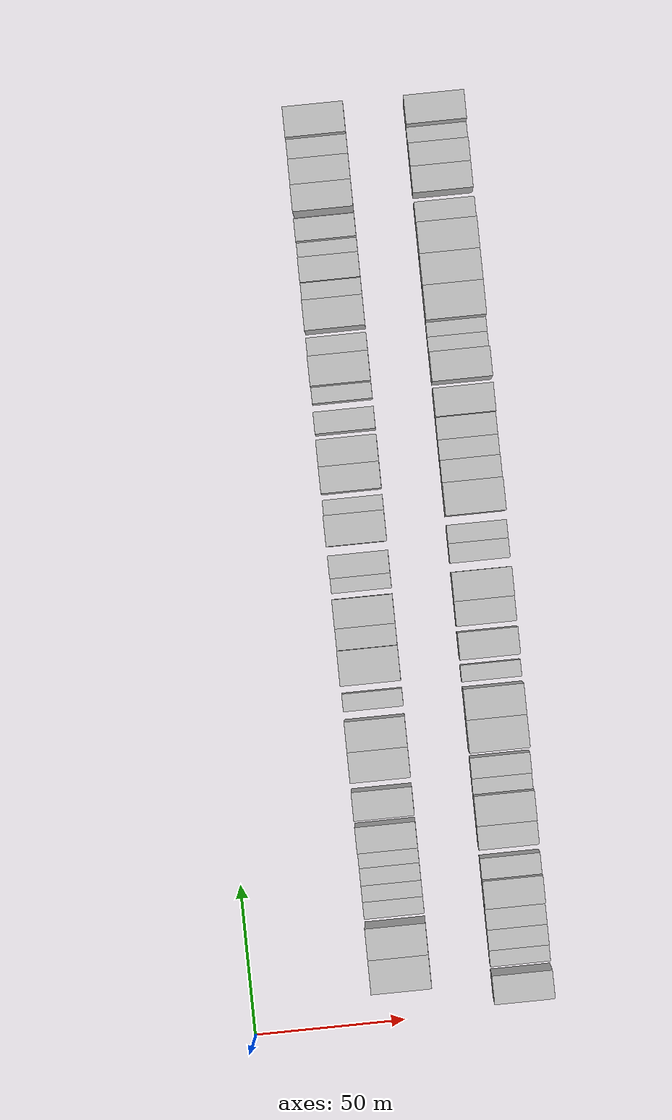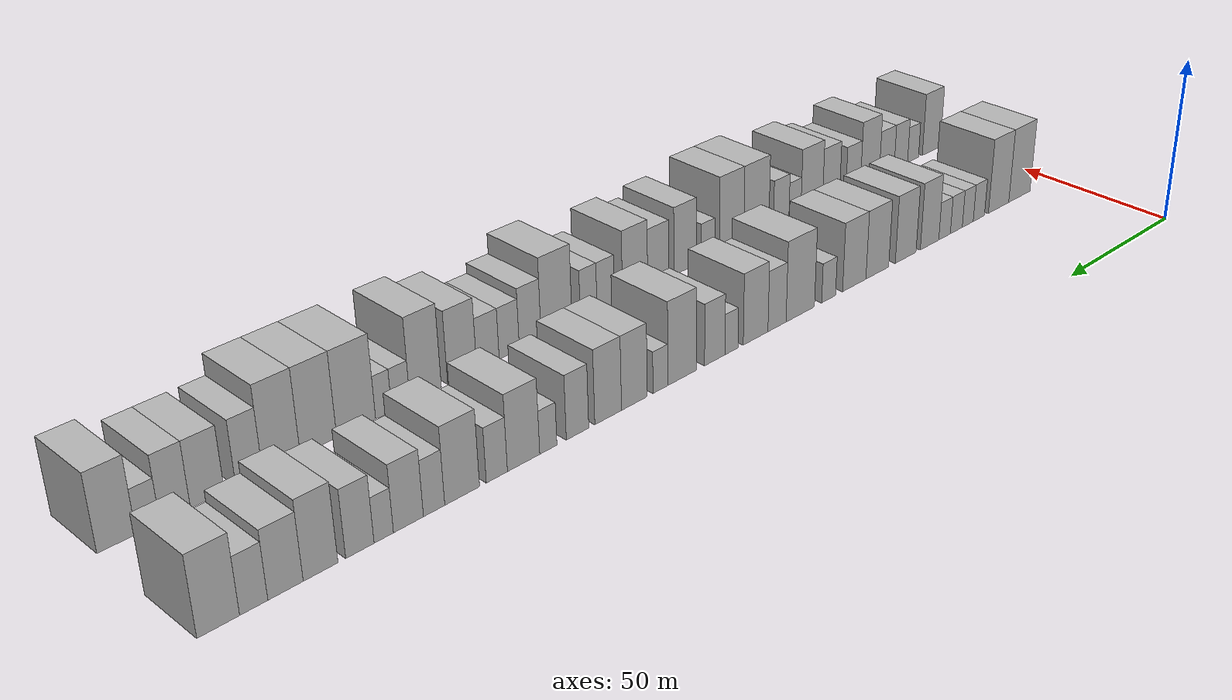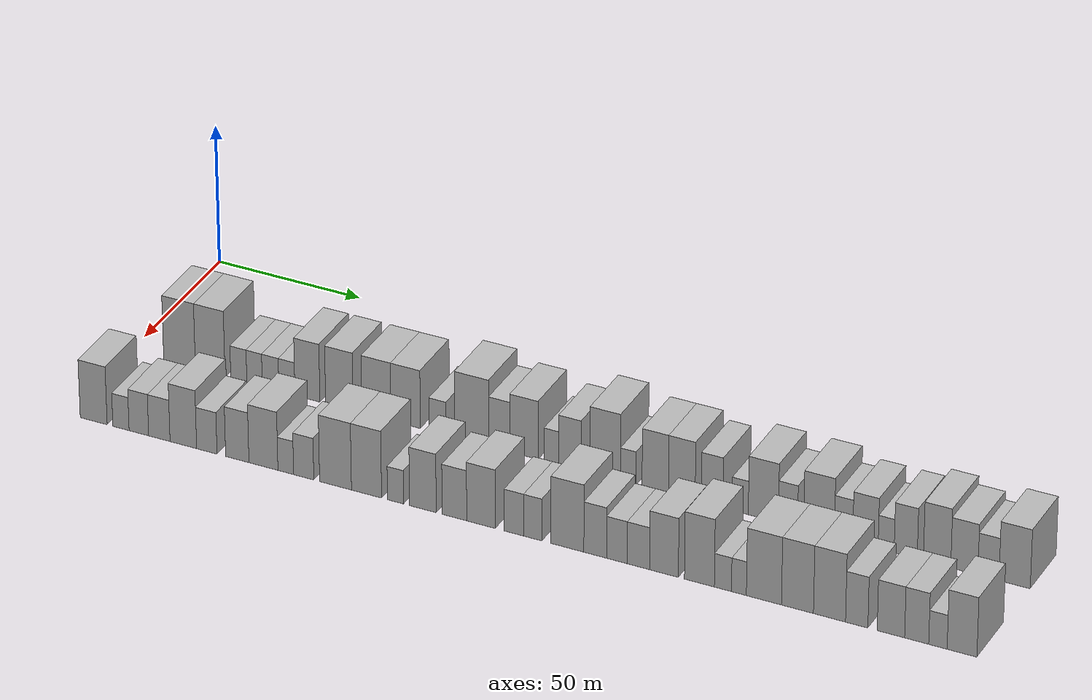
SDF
<sdf version="1.6">
 <world name="default">
  <model name="building_33">
   <static>1</static>
   <pose>50.0000 17.7263 0 0.000000 0.000000 0.000000</pose>
   <link name="link">
    <pose>0 0 12.00 0 0 0</pose>
    <collision name="collision"><geometry><box><size>20.0000 11.1909 24.0000</size></box></geometry></collision>
    <visual name="visual">
     <cast_shadows>0</cast_shadows>
     <geometry><box><size>20.0000 11.1909 24.0000</size></box></geometry>
     <material>
      <script>
       <uri>model://HANNAS_wall/materials/scripts</uri>
       <uri>model://HANNAS_wall/materials/textures</uri>
       <name>vrc/HANNAS_wall</name>
      </script>
     </material>
    </visual>
   </link>
  </model>
  <model name="building_34">
   <static>1</static>
   <pose>50.0000 28.5475 0 0.000000 0.000000 0.000000</pose>
   <link name="link">
    <pose>0 0 12.00 0 0 0</pose>
    <collision name="collision"><geometry><box><size>20.0000 10.4515 24.0000</size></box></geometry></collision>
    <visual name="visual">
     <cast_shadows>0</cast_shadows>
     <geometry><box><size>20.0000 10.4515 24.0000</size></box></geometry>
     <material>
      <script>
       <uri>model://HANNAS_wall/materials/scripts</uri>
       <uri>model://HANNAS_wall/materials/textures</uri>
       <name>vrc/HANNAS_wall</name>
      </script>
     </material>
    </visual>
   </link>
  </model>
  <model name="building_35">
   <static>1</static>
   <pose>50.0000 38.5941 0 0.000000 0.000000 0.000000</pose>
   <link name="link">
    <pose>0 0 6.00 0 0 0</pose>
    <collision name="collision"><geometry><box><size>20.0000 5.6416 12.0000</size></box></geometry></collision>
    <visual name="visual">
     <cast_shadows>0</cast_shadows>
     <geometry><box><size>20.0000 5.6416 12.0000</size></box></geometry>
     <material>
      <script>
       <uri>model://HANNAS_wall/materials/scripts</uri>
       <uri>model://HANNAS_wall/materials/textures</uri>
       <name>vrc/HANNAS_wall</name>
      </script>
     </material>
    </visual>
   </link>
  </model>
  <model name="building_36">
   <static>1</static>
   <pose>50.0000 44.1248 0 0.000000 0.000000 0.000000</pose>
   <link name="link">
    <pose>0 0 6.00 0 0 0</pose>
    <collision name="collision"><geometry><box><size>20.0000 5.4198 12.0000</size></box></geometry></collision>
    <visual name="visual">
     <cast_shadows>0</cast_shadows>
     <geometry><box><size>20.0000 5.4198 12.0000</size></box></geometry>
     <material>
      <script>
       <uri>model://HANNAS_wall/materials/scripts</uri>
       <uri>model://HANNAS_wall/materials/textures</uri>
       <name>vrc/HANNAS_wall</name>
      </script>
     </material>
    </visual>
   </link>
  </model>
  <model name="building_37">
   <static>1</static>
   <pose>50.0000 49.7424 0 0.000000 0.000000 0.000000</pose>
   <link name="link">
    <pose>0 0 6.00 0 0 0</pose>
    <collision name="collision"><geometry><box><size>20.0000 5.8154 12.0000</size></box></geometry></collision>
    <visual name="visual">
     <cast_shadows>0</cast_shadows>
     <geometry><box><size>20.0000 5.8154 12.0000</size></box></geometry>
     <material>
      <script>
       <uri>model://HANNAS_wall/materials/scripts</uri>
       <uri>model://HANNAS_wall/materials/textures</uri>
       <name>vrc/HANNAS_wall</name>
      </script>
     </material>
    </visual>
   </link>
  </model>
  <model name="building_38">
   <static>1</static>
   <pose>50.0000 55.4528 0 0.000000 0.000000 0.000000</pose>
   <link name="link">
    <pose>0 0 6.00 0 0 0</pose>
    <collision name="collision"><geometry><box><size>20.0000 5.6054 12.0000</size></box></geometry></collision>
    <visual name="visual">
     <cast_shadows>0</cast_shadows>
     <geometry><box><size>20.0000 5.6054 12.0000</size></box></geometry>
     <material>
      <script>
       <uri>model://HANNAS_wall/materials/scripts</uri>
       <uri>model://HANNAS_wall/materials/textures</uri>
       <name>vrc/HANNAS_wall</name>
      </script>
     </material>
    </visual>
   </link>
  </model>
  <model name="building_39">
   <static>1</static>
   <pose>50.0000 62.6097 0 0.000000 0.000000 0.000000</pose>
   <link name="link">
    <pose>0 0 10.50 0 0 0</pose>
    <collision name="collision"><geometry><box><size>20.0000 8.7083 21.0000</size></box></geometry></collision>
    <visual name="visual">
     <cast_shadows>0</cast_shadows>
     <geometry><box><size>20.0000 8.7083 21.0000</size></box></geometry>
     <material>
      <script>
       <uri>model://HANNAS_wall/materials/scripts</uri>
       <uri>model://HANNAS_wall/materials/textures</uri>
       <name>vrc/HANNAS_wall</name>
      </script>
     </material>
    </visual>
   </link>
  </model>
  <model name="building_40">
   <static>1</static>
   <pose>50.0000 73.7366 0 0.000000 0.000000 0.000000</pose>
   <link name="link">
    <pose>0 0 10.50 0 0 0</pose>
    <collision name="collision"><geometry><box><size>20.0000 9.5457 21.0000</size></box></geometry></collision>
    <visual name="visual">
     <cast_shadows>0</cast_shadows>
     <geometry><box><size>20.0000 9.5457 21.0000</size></box></geometry>
     <material>
      <script>
       <uri>model://HANNAS_wall/materials/scripts</uri>
       <uri>model://HANNAS_wall/materials/textures</uri>
       <name>vrc/HANNAS_wall</name>
      </script>
     </material>
    </visual>
   </link>
  </model>
  <model name="building_41">
   <static>1</static>
   <pose>50.0000 86.5715 0 0.000000 0.000000 0.000000</pose>
   <link name="link">
    <pose>0 0 10.50 0 0 0</pose>
    <collision name="collision"><geometry><box><size>20.0000 10.1241 21.0000</size></box></geometry></collision>
    <visual name="visual">
     <cast_shadows>0</cast_shadows>
     <geometry><box><size>20.0000 10.1241 21.0000</size></box></geometry>
     <material>
      <script>
       <uri>model://HANNAS_wall/materials/scripts</uri>
       <uri>model://HANNAS_wall/materials/textures</uri>
       <name>vrc/HANNAS_wall</name>
      </script>
     </material>
    </visual>
   </link>
  </model>
  <model name="building_42">
   <static>1</static>
   <pose>50.0000 96.6998 0 0.000000 0.000000 0.000000</pose>
   <link name="link">
    <pose>0 0 10.50 0 0 0</pose>
    <collision name="collision"><geometry><box><size>20.0000 10.1325 21.0000</size></box></geometry></collision>
    <visual name="visual">
     <cast_shadows>0</cast_shadows>
     <geometry><box><size>20.0000 10.1325 21.0000</size></box></geometry>
     <material>
      <script>
       <uri>model://HANNAS_wall/materials/scripts</uri>
       <uri>model://HANNAS_wall/materials/textures</uri>
       <name>vrc/HANNAS_wall</name>
      </script>
     </material>
    </visual>
   </link>
  </model>
  <model name="building_43">
   <static>1</static>
   <pose>50.0000 107.6959 0 0.000000 0.000000 0.000000</pose>
   <link name="link">
    <pose>0 0 6.00 0 0 0</pose>
    <collision name="collision"><geometry><box><size>20.0000 5.8596 12.0000</size></box></geometry></collision>
    <visual name="visual">
     <cast_shadows>0</cast_shadows>
     <geometry><box><size>20.0000 5.8596 12.0000</size></box></geometry>
     <material>
      <script>
       <uri>model://HANNAS_wall/materials/scripts</uri>
       <uri>model://HANNAS_wall/materials/textures</uri>
       <name>vrc/HANNAS_wall</name>
      </script>
     </material>
    </visual>
   </link>
  </model>
  <model name="building_44">
   <static>1</static>
   <pose>50.0000 119.4271 0 0.000000 0.000000 0.000000</pose>
   <link name="link">
    <pose>0 0 12.00 0 0 0</pose>
    <collision name="collision"><geometry><box><size>20.0000 11.6029 24.0000</size></box></geometry></collision>
    <visual name="visual">
     <cast_shadows>0</cast_shadows>
     <geometry><box><size>20.0000 11.6029 24.0000</size></box></geometry>
     <material>
      <script>
       <uri>model://HANNAS_wall/materials/scripts</uri>
       <uri>model://HANNAS_wall/materials/textures</uri>
       <name>vrc/HANNAS_wall</name>
      </script>
     </material>
    </visual>
   </link>
  </model>
  <model name="building_45">
   <static>1</static>
   <pose>50.0000 128.8334 0 0.000000 0.000000 0.000000</pose>
   <link name="link">
    <pose>0 0 9.00 0 0 0</pose>
    <collision name="collision"><geometry><box><size>20.0000 7.2097 18.0000</size></box></geometry></collision>
    <visual name="visual">
     <cast_shadows>0</cast_shadows>
     <geometry><box><size>20.0000 7.2097 18.0000</size></box></geometry>
     <material>
      <script>
       <uri>model://HANNAS_wall/materials/scripts</uri>
       <uri>model://HANNAS_wall/materials/textures</uri>
       <name>vrc/HANNAS_wall</name>
      </script>
     </material>
    </visual>
   </link>
  </model>
  <model name="building_46">
   <static>1</static>
   <pose>50.0000 137.2449 0 0.000000 0.000000 0.000000</pose>
   <link name="link">
    <pose>0 0 10.50 0 0 0</pose>
    <collision name="collision"><geometry><box><size>20.0000 9.6132 21.0000</size></box></geometry></collision>
    <visual name="visual">
     <cast_shadows>0</cast_shadows>
     <geometry><box><size>20.0000 9.6132 21.0000</size></box></geometry>
     <material>
      <script>
       <uri>model://HANNAS_wall/materials/scripts</uri>
       <uri>model://HANNAS_wall/materials/textures</uri>
       <name>vrc/HANNAS_wall</name>
      </script>
     </material>
    </visual>
   </link>
  </model>
  <model name="building_47">
   <static>1</static>
   <pose>50.0000 146.5367 0 0.000000 0.000000 0.000000</pose>
   <link name="link">
    <pose>0 0 6.00 0 0 0</pose>
    <collision name="collision"><geometry><box><size>20.0000 4.9704 12.0000</size></box></geometry></collision>
    <visual name="visual">
     <cast_shadows>0</cast_shadows>
     <geometry><box><size>20.0000 4.9704 12.0000</size></box></geometry>
     <material>
      <script>
       <uri>model://HANNAS_wall/materials/scripts</uri>
       <uri>model://HANNAS_wall/materials/textures</uri>
       <name>vrc/HANNAS_wall</name>
      </script>
     </material>
    </visual>
   </link>
  </model>
  <model name="building_48">
   <static>1</static>
   <pose>50.0000 152.8156 0 0.000000 0.000000 0.000000</pose>
   <link name="link">
    <pose>0 0 9.00 0 0 0</pose>
    <collision name="collision"><geometry><box><size>20.0000 7.5873 18.0000</size></box></geometry></collision>
    <visual name="visual">
     <cast_shadows>0</cast_shadows>
     <geometry><box><size>20.0000 7.5873 18.0000</size></box></geometry>
     <material>
      <script>
       <uri>model://HANNAS_wall/materials/scripts</uri>
       <uri>model://HANNAS_wall/materials/textures</uri>
       <name>vrc/HANNAS_wall</name>
      </script>
     </material>
    </visual>
   </link>
  </model>
  <model name="building_49">
   <static>1</static>
   <pose>50.0000 164.7333 0 0.000000 0.000000 0.000000</pose>
   <link name="link">
    <pose>0 0 12.00 0 0 0</pose>
    <collision name="collision"><geometry><box><size>20.0000 10.2480 24.0000</size></box></geometry></collision>
    <visual name="visual">
     <cast_shadows>0</cast_shadows>
     <geometry><box><size>20.0000 10.2480 24.0000</size></box></geometry>
     <material>
      <script>
       <uri>model://HANNAS_wall/materials/scripts</uri>
       <uri>model://HANNAS_wall/materials/textures</uri>
       <name>vrc/HANNAS_wall</name>
      </script>
     </material>
    </visual>
   </link>
  </model>
  <model name="building_50">
   <static>1</static>
   <pose>50.0000 172.4840 0 0.000000 0.000000 0.000000</pose>
   <link name="link">
    <pose>0 0 6.00 0 0 0</pose>
    <collision name="collision"><geometry><box><size>20.0000 5.2534 12.0000</size></box></geometry></collision>
    <visual name="visual">
     <cast_shadows>0</cast_shadows>
     <geometry><box><size>20.0000 5.2534 12.0000</size></box></geometry>
     <material>
      <script>
       <uri>model://HANNAS_wall/materials/scripts</uri>
       <uri>model://HANNAS_wall/materials/textures</uri>
       <name>vrc/HANNAS_wall</name>
      </script>
     </material>
    </visual>
   </link>
  </model>
  <model name="building_51">
   <static>1</static>
   <pose>50.0000 181.5382 0 0.000000 0.000000 0.000000</pose>
   <link name="link">
    <pose>0 0 10.50 0 0 0</pose>
    <collision name="collision"><geometry><box><size>20.0000 8.8549 21.0000</size></box></geometry></collision>
    <visual name="visual">
     <cast_shadows>0</cast_shadows>
     <geometry><box><size>20.0000 8.8549 21.0000</size></box></geometry>
     <material>
      <script>
       <uri>model://HANNAS_wall/materials/scripts</uri>
       <uri>model://HANNAS_wall/materials/textures</uri>
       <name>vrc/HANNAS_wall</name>
      </script>
     </material>
    </visual>
   </link>
  </model>
  <model name="building_52">
   <static>1</static>
   <pose>50.0000 190.4332 0 0.000000 0.000000 0.000000</pose>
   <link name="link">
    <pose>0 0 10.50 0 0 0</pose>
    <collision name="collision"><geometry><box><size>20.0000 8.9350 21.0000</size></box></geometry></collision>
    <visual name="visual">
     <cast_shadows>0</cast_shadows>
     <geometry><box><size>20.0000 8.9350 21.0000</size></box></geometry>
     <material>
      <script>
       <uri>model://HANNAS_wall/materials/scripts</uri>
       <uri>model://HANNAS_wall/materials/textures</uri>
       <name>vrc/HANNAS_wall</name>
      </script>
     </material>
    </visual>
   </link>
  </model>
  <model name="building_53">
   <static>1</static>
   <pose>50.0000 200.5397 0 0.000000 0.000000 0.000000</pose>
   <link name="link">
    <pose>0 0 9.00 0 0 0</pose>
    <collision name="collision"><geometry><box><size>20.0000 7.2780 18.0000</size></box></geometry></collision>
    <visual name="visual">
     <cast_shadows>0</cast_shadows>
     <geometry><box><size>20.0000 7.2780 18.0000</size></box></geometry>
     <material>
      <script>
       <uri>model://HANNAS_wall/materials/scripts</uri>
       <uri>model://HANNAS_wall/materials/textures</uri>
       <name>vrc/HANNAS_wall</name>
      </script>
     </material>
    </visual>
   </link>
  </model>
  <model name="building_54">
   <static>1</static>
   <pose>50.0000 209.8873 0 0.000000 0.000000 0.000000</pose>
   <link name="link">
    <pose>0 0 6.00 0 0 0</pose>
    <collision name="collision"><geometry><box><size>20.0000 5.4173 12.0000</size></box></geometry></collision>
    <visual name="visual">
     <cast_shadows>0</cast_shadows>
     <geometry><box><size>20.0000 5.4173 12.0000</size></box></geometry>
     <material>
      <script>
       <uri>model://HANNAS_wall/materials/scripts</uri>
       <uri>model://HANNAS_wall/materials/textures</uri>
       <name>vrc/HANNAS_wall</name>
      </script>
     </material>
    </visual>
   </link>
  </model>
  <model name="building_55">
   <static>1</static>
   <pose>50.0000 217.5736 0 0.000000 0.000000 0.000000</pose>
   <link name="link">
    <pose>0 0 10.50 0 0 0</pose>
    <collision name="collision"><geometry><box><size>20.0000 9.9553 21.0000</size></box></geometry></collision>
    <visual name="visual">
     <cast_shadows>0</cast_shadows>
     <geometry><box><size>20.0000 9.9553 21.0000</size></box></geometry>
     <material>
      <script>
       <uri>model://HANNAS_wall/materials/scripts</uri>
       <uri>model://HANNAS_wall/materials/textures</uri>
       <name>vrc/HANNAS_wall</name>
      </script>
     </material>
    </visual>
   </link>
  </model>
  <model name="building_56">
   <static>1</static>
   <pose>50.0000 225.7262 0 0.000000 0.000000 0.000000</pose>
   <link name="link">
    <pose>0 0 7.50 0 0 0</pose>
    <collision name="collision"><geometry><box><size>20.0000 6.3499 15.0000</size></box></geometry></collision>
    <visual name="visual">
     <cast_shadows>0</cast_shadows>
     <geometry><box><size>20.0000 6.3499 15.0000</size></box></geometry>
     <material>
      <script>
       <uri>model://HANNAS_wall/materials/scripts</uri>
       <uri>model://HANNAS_wall/materials/textures</uri>
       <name>vrc/HANNAS_wall</name>
      </script>
     </material>
    </visual>
   </link>
  </model>
  <model name="building_57">
   <static>1</static>
   <pose>50.0000 235.9621 0 0.000000 0.000000 0.000000</pose>
   <link name="link">
    <pose>0 0 10.50 0 0 0</pose>
    <collision name="collision"><geometry><box><size>20.0000 10.1217 21.0000</size></box></geometry></collision>
    <visual name="visual">
     <cast_shadows>0</cast_shadows>
     <geometry><box><size>20.0000 10.1217 21.0000</size></box></geometry>
     <material>
      <script>
       <uri>model://HANNAS_wall/materials/scripts</uri>
       <uri>model://HANNAS_wall/materials/textures</uri>
       <name>vrc/HANNAS_wall</name>
      </script>
     </material>
    </visual>
   </link>
  </model>
  <model name="building_58">
   <static>1</static>
   <pose>50.0000 244.0430 0 0.000000 0.000000 0.000000</pose>
   <link name="link">
    <pose>0 0 7.50 0 0 0</pose>
    <collision name="collision"><geometry><box><size>20.0000 6.0402 15.0000</size></box></geometry></collision>
    <visual name="visual">
     <cast_shadows>0</cast_shadows>
     <geometry><box><size>20.0000 6.0402 15.0000</size></box></geometry>
     <material>
      <script>
       <uri>model://HANNAS_wall/materials/scripts</uri>
       <uri>model://HANNAS_wall/materials/textures</uri>
       <name>vrc/HANNAS_wall</name>
      </script>
     </material>
    </visual>
   </link>
  </model>
  <model name="building_59">
   <static>1</static>
   <pose>50.0000 251.2206 0 0.000000 0.000000 0.000000</pose>
   <link name="link">
    <pose>0 0 9.00 0 0 0</pose>
    <collision name="collision"><geometry><box><size>20.0000 8.3151 18.0000</size></box></geometry></collision>
    <visual name="visual">
     <cast_shadows>0</cast_shadows>
     <geometry><box><size>20.0000 8.3151 18.0000</size></box></geometry>
     <material>
      <script>
       <uri>model://HANNAS_wall/materials/scripts</uri>
       <uri>model://HANNAS_wall/materials/textures</uri>
       <name>vrc/HANNAS_wall</name>
      </script>
     </material>
    </visual>
   </link>
  </model>
  <model name="building_60">
   <static>1</static>
   <pose>50.0000 258.0000 0 0.000000 0.000000 0.000000</pose>
   <link name="link">
    <pose>0 0 6.00 0 0 0</pose>
    <collision name="collision"><geometry><box><size>20.0000 5.2437 12.0000</size></box></geometry></collision>
    <visual name="visual">
     <cast_shadows>0</cast_shadows>
     <geometry><box><size>20.0000 5.2437 12.0000</size></box></geometry>
     <material>
      <script>
       <uri>model://HANNAS_wall/materials/scripts</uri>
       <uri>model://HANNAS_wall/materials/textures</uri>
       <name>vrc/HANNAS_wall</name>
      </script>
     </material>
    </visual>
   </link>
  </model>
  <model name="building_61">
   <static>1</static>
   <pose>50.0000 264.3909 0 0.000000 0.000000 0.000000</pose>
   <link name="link">
    <pose>0 0 9.00 0 0 0</pose>
    <collision name="collision"><geometry><box><size>20.0000 7.5382 18.0000</size></box></geometry></collision>
    <visual name="visual">
     <cast_shadows>0</cast_shadows>
     <geometry><box><size>20.0000 7.5382 18.0000</size></box></geometry>
     <material>
      <script>
       <uri>model://HANNAS_wall/materials/scripts</uri>
       <uri>model://HANNAS_wall/materials/textures</uri>
       <name>vrc/HANNAS_wall</name>
      </script>
     </material>
    </visual>
   </link>
  </model>
  <model name="building_62">
   <static>1</static>
   <pose>50.0000 274.6211 0 0.000000 0.000000 0.000000</pose>
   <link name="link">
    <pose>0 0 10.50 0 0 0</pose>
    <collision name="collision"><geometry><box><size>20.0000 8.9221 21.0000</size></box></geometry></collision>
    <visual name="visual">
     <cast_shadows>0</cast_shadows>
     <geometry><box><size>20.0000 8.9221 21.0000</size></box></geometry>
     <material>
      <script>
       <uri>model://HANNAS_wall/materials/scripts</uri>
       <uri>model://HANNAS_wall/materials/textures</uri>
       <name>vrc/HANNAS_wall</name>
      </script>
     </material>
    </visual>
   </link>
  </model>
  <model name="building_63">
   <static>1</static>
   <pose>50.0000 283.4762 0 0.000000 0.000000 0.000000</pose>
   <link name="link">
    <pose>0 0 9.00 0 0 0</pose>
    <collision name="collision"><geometry><box><size>20.0000 8.7880 18.0000</size></box></geometry></collision>
    <visual name="visual">
     <cast_shadows>0</cast_shadows>
     <geometry><box><size>20.0000 8.7880 18.0000</size></box></geometry>
     <material>
      <script>
       <uri>model://HANNAS_wall/materials/scripts</uri>
       <uri>model://HANNAS_wall/materials/textures</uri>
       <name>vrc/HANNAS_wall</name>
      </script>
     </material>
    </visual>
   </link>
  </model>
  <model name="building_64">
   <static>1</static>
   <pose>50.0000 291.2876 0 0.000000 0.000000 0.000000</pose>
   <link name="link">
    <pose>0 0 7.50 0 0 0</pose>
    <collision name="collision"><geometry><box><size>20.0000 6.8347 15.0000</size></box></geometry></collision>
    <visual name="visual">
     <cast_shadows>0</cast_shadows>
     <geometry><box><size>20.0000 6.8347 15.0000</size></box></geometry>
     <material>
      <script>
       <uri>model://HANNAS_wall/materials/scripts</uri>
       <uri>model://HANNAS_wall/materials/textures</uri>
       <name>vrc/HANNAS_wall</name>
      </script>
     </material>
    </visual>
   </link>
  </model>
  <model name="building_65">
   <static>1</static>
   <pose>50.0000 299.7510 0 0.000000 0.000000 0.000000</pose>
   <link name="link">
    <pose>0 0 10.50 0 0 0</pose>
    <collision name="collision"><geometry><box><size>20.0000 10.0922 21.0000</size></box></geometry></collision>
    <visual name="visual">
     <cast_shadows>0</cast_shadows>
     <geometry><box><size>20.0000 10.0922 21.0000</size></box></geometry>
     <material>
      <script>
       <uri>model://HANNAS_wall/materials/scripts</uri>
       <uri>model://HANNAS_wall/materials/textures</uri>
       <name>vrc/HANNAS_wall</name>
      </script>
     </material>
    </visual>
   </link>
  </model>
  <model name="building_100">
   <static>1</static>
   <pose>90.0000 9.2205 0 0.000000 0.000000 0.000000</pose>
   <link name="link">
    <pose>0 0 10.50 0 0 0</pose>
    <collision name="collision"><geometry><box><size>20.0000 9.4515 21.0000</size></box></geometry></collision>
    <visual name="visual">
     <cast_shadows>0</cast_shadows>
     <geometry><box><size>20.0000 9.4515 21.0000</size></box></geometry>
     <material>
      <script>
       <uri>model://HANNAS_wall/materials/scripts</uri>
       <uri>model://HANNAS_wall/materials/textures</uri>
       <name>vrc/HANNAS_wall</name>
      </script>
     </material>
    </visual>
   </link>
  </model>
  <model name="building_101">
   <static>1</static>
   <pose>90.0000 18.7805 0 0.000000 0.000000 0.000000</pose>
   <link name="link">
    <pose>0 0 6.00 0 0 0</pose>
    <collision name="collision"><geometry><box><size>20.0000 5.6684 12.0000</size></box></geometry></collision>
    <visual name="visual">
     <cast_shadows>0</cast_shadows>
     <geometry><box><size>20.0000 5.6684 12.0000</size></box></geometry>
     <material>
      <script>
       <uri>model://HANNAS_wall/materials/scripts</uri>
       <uri>model://HANNAS_wall/materials/textures</uri>
       <name>vrc/HANNAS_wall</name>
      </script>
     </material>
    </visual>
   </link>
  </model>
  <model name="building_102">
   <static>1</static>
   <pose>90.0000 25.0334 0 0.000000 0.000000 0.000000</pose>
   <link name="link">
    <pose>0 0 7.50 0 0 0</pose>
    <collision name="collision"><geometry><box><size>20.0000 6.8376 15.0000</size></box></geometry></collision>
    <visual name="visual">
     <cast_shadows>0</cast_shadows>
     <geometry><box><size>20.0000 6.8376 15.0000</size></box></geometry>
     <material>
      <script>
       <uri>model://HANNAS_wall/materials/scripts</uri>
       <uri>model://HANNAS_wall/materials/textures</uri>
       <name>vrc/HANNAS_wall</name>
      </script>
     </material>
    </visual>
   </link>
  </model>
  <model name="building_103">
   <static>1</static>
   <pose>90.0000 32.1806 0 0.000000 0.000000 0.000000</pose>
   <link name="link">
    <pose>0 0 7.50 0 0 0</pose>
    <collision name="collision"><geometry><box><size>20.0000 7.4567 15.0000</size></box></geometry></collision>
    <visual name="visual">
     <cast_shadows>0</cast_shadows>
     <geometry><box><size>20.0000 7.4567 15.0000</size></box></geometry>
     <material>
      <script>
       <uri>model://HANNAS_wall/materials/scripts</uri>
       <uri>model://HANNAS_wall/materials/textures</uri>
       <name>vrc/HANNAS_wall</name>
      </script>
     </material>
    </visual>
   </link>
  </model>
  <model name="building_104">
   <static>1</static>
   <pose>90.0000 40.5346 0 0.000000 0.000000 0.000000</pose>
   <link name="link">
    <pose>0 0 10.50 0 0 0</pose>
    <collision name="collision"><geometry><box><size>20.0000 9.2513 21.0000</size></box></geometry></collision>
    <visual name="visual">
     <cast_shadows>0</cast_shadows>
     <geometry><box><size>20.0000 9.2513 21.0000</size></box></geometry>
     <material>
      <script>
       <uri>model://HANNAS_wall/materials/scripts</uri>
       <uri>model://HANNAS_wall/materials/textures</uri>
       <name>vrc/HANNAS_wall</name>
      </script>
     </material>
    </visual>
   </link>
  </model>
  <model name="building_105">
   <static>1</static>
   <pose>90.0000 48.6861 0 0.000000 0.000000 0.000000</pose>
   <link name="link">
    <pose>0 0 7.50 0 0 0</pose>
    <collision name="collision"><geometry><box><size>20.0000 7.0518 15.0000</size></box></geometry></collision>
    <visual name="visual">
     <cast_shadows>0</cast_shadows>
     <geometry><box><size>20.0000 7.0518 15.0000</size></box></geometry>
     <material>
      <script>
       <uri>model://HANNAS_wall/materials/scripts</uri>
       <uri>model://HANNAS_wall/materials/textures</uri>
       <name>vrc/HANNAS_wall</name>
      </script>
     </material>
    </visual>
   </link>
  </model>
  <model name="building_106">
   <static>1</static>
   <pose>90.0000 59.2308 0 0.000000 0.000000 0.000000</pose>
   <link name="link">
    <pose>0 0 9.00 0 0 0</pose>
    <collision name="collision"><geometry><box><size>20.0000 8.0375 18.0000</size></box></geometry></collision>
    <visual name="visual">
     <cast_shadows>0</cast_shadows>
     <geometry><box><size>20.0000 8.0375 18.0000</size></box></geometry>
     <material>
      <script>
       <uri>model://HANNAS_wall/materials/scripts</uri>
       <uri>model://HANNAS_wall/materials/textures</uri>
       <name>vrc/HANNAS_wall</name>
      </script>
     </material>
    </visual>
   </link>
  </model>
  <model name="building_107">
   <static>1</static>
   <pose>90.0000 68.2446 0 0.000000 0.000000 0.000000</pose>
   <link name="link">
    <pose>0 0 10.50 0 0 0</pose>
    <collision name="collision"><geometry><box><size>20.0000 9.9901 21.0000</size></box></geometry></collision>
    <visual name="visual">
     <cast_shadows>0</cast_shadows>
     <geometry><box><size>20.0000 9.9901 21.0000</size></box></geometry>
     <material>
      <script>
       <uri>model://HANNAS_wall/materials/scripts</uri>
       <uri>model://HANNAS_wall/materials/textures</uri>
       <name>vrc/HANNAS_wall</name>
      </script>
     </material>
    </visual>
   </link>
  </model>
  <model name="building_108">
   <static>1</static>
   <pose>90.0000 75.9349 0 0.000000 0.000000 0.000000</pose>
   <link name="link">
    <pose>0 0 6.00 0 0 0</pose>
    <collision name="collision"><geometry><box><size>20.0000 5.3905 12.0000</size></box></geometry></collision>
    <visual name="visual">
     <cast_shadows>0</cast_shadows>
     <geometry><box><size>20.0000 5.3905 12.0000</size></box></geometry>
     <material>
      <script>
       <uri>model://HANNAS_wall/materials/scripts</uri>
       <uri>model://HANNAS_wall/materials/textures</uri>
       <name>vrc/HANNAS_wall</name>
      </script>
     </material>
    </visual>
   </link>
  </model>
  <model name="building_109">
   <static>1</static>
   <pose>90.0000 82.0877 0 0.000000 0.000000 0.000000</pose>
   <link name="link">
    <pose>0 0 7.50 0 0 0</pose>
    <collision name="collision"><geometry><box><size>20.0000 6.9152 15.0000</size></box></geometry></collision>
    <visual name="visual">
     <cast_shadows>0</cast_shadows>
     <geometry><box><size>20.0000 6.9152 15.0000</size></box></geometry>
     <material>
      <script>
       <uri>model://HANNAS_wall/materials/scripts</uri>
       <uri>model://HANNAS_wall/materials/textures</uri>
       <name>vrc/HANNAS_wall</name>
      </script>
     </material>
    </visual>
   </link>
  </model>
  <model name="building_110">
   <static>1</static>
   <pose>90.0000 92.9903 0 0.000000 0.000000 0.000000</pose>
   <link name="link">
    <pose>0 0 12.00 0 0 0</pose>
    <collision name="collision"><geometry><box><size>20.0000 10.8899 24.0000</size></box></geometry></collision>
    <visual name="visual">
     <cast_shadows>0</cast_shadows>
     <geometry><box><size>20.0000 10.8899 24.0000</size></box></geometry>
     <material>
      <script>
       <uri>model://HANNAS_wall/materials/scripts</uri>
       <uri>model://HANNAS_wall/materials/textures</uri>
       <name>vrc/HANNAS_wall</name>
      </script>
     </material>
    </visual>
   </link>
  </model>
  <model name="building_111">
   <static>1</static>
   <pose>90.0000 103.5638 0 0.000000 0.000000 0.000000</pose>
   <link name="link">
    <pose>0 0 12.00 0 0 0</pose>
    <collision name="collision"><geometry><box><size>20.0000 10.2572 24.0000</size></box></geometry></collision>
    <visual name="visual">
     <cast_shadows>0</cast_shadows>
     <geometry><box><size>20.0000 10.2572 24.0000</size></box></geometry>
     <material>
      <script>
       <uri>model://HANNAS_wall/materials/scripts</uri>
       <uri>model://HANNAS_wall/materials/textures</uri>
       <name>vrc/HANNAS_wall</name>
      </script>
     </material>
    </visual>
   </link>
  </model>
  <model name="building_112">
   <static>1</static>
   <pose>90.0000 113.4413 0 0.000000 0.000000 0.000000</pose>
   <link name="link">
    <pose>0 0 6.00 0 0 0</pose>
    <collision name="collision"><geometry><box><size>20.0000 5.4978 12.0000</size></box></geometry></collision>
    <visual name="visual">
     <cast_shadows>0</cast_shadows>
     <geometry><box><size>20.0000 5.4978 12.0000</size></box></geometry>
     <material>
      <script>
       <uri>model://HANNAS_wall/materials/scripts</uri>
       <uri>model://HANNAS_wall/materials/textures</uri>
       <name>vrc/HANNAS_wall</name>
      </script>
     </material>
    </visual>
   </link>
  </model>
  <model name="building_113">
   <static>1</static>
   <pose>90.0000 122.7057 0 0.000000 0.000000 0.000000</pose>
   <link name="link">
    <pose>0 0 10.50 0 0 0</pose>
    <collision name="collision"><geometry><box><size>20.0000 9.0312 21.0000</size></box></geometry></collision>
    <visual name="visual">
     <cast_shadows>0</cast_shadows>
     <geometry><box><size>20.0000 9.0312 21.0000</size></box></geometry>
     <material>
      <script>
       <uri>model://HANNAS_wall/materials/scripts</uri>
       <uri>model://HANNAS_wall/materials/textures</uri>
       <name>vrc/HANNAS_wall</name>
      </script>
     </material>
    </visual>
   </link>
  </model>
  <model name="building_114">
   <static>1</static>
   <pose>90.0000 133.3651 0 0.000000 0.000000 0.000000</pose>
   <link name="link">
    <pose>0 0 9.00 0 0 0</pose>
    <collision name="collision"><geometry><box><size>20.0000 8.2876 18.0000</size></box></geometry></collision>
    <visual name="visual">
     <cast_shadows>0</cast_shadows>
     <geometry><box><size>20.0000 8.2876 18.0000</size></box></geometry>
     <material>
      <script>
       <uri>model://HANNAS_wall/materials/scripts</uri>
       <uri>model://HANNAS_wall/materials/textures</uri>
       <name>vrc/HANNAS_wall</name>
      </script>
     </material>
    </visual>
   </link>
  </model>
  <model name="building_115">
   <static>1</static>
   <pose>90.0000 142.3251 0 0.000000 0.000000 0.000000</pose>
   <link name="link">
    <pose>0 0 10.50 0 0 0</pose>
    <collision name="collision"><geometry><box><size>20.0000 9.6323 21.0000</size></box></geometry></collision>
    <visual name="visual">
     <cast_shadows>0</cast_shadows>
     <geometry><box><size>20.0000 9.6323 21.0000</size></box></geometry>
     <material>
      <script>
       <uri>model://HANNAS_wall/materials/scripts</uri>
       <uri>model://HANNAS_wall/materials/textures</uri>
       <name>vrc/HANNAS_wall</name>
      </script>
     </material>
    </visual>
   </link>
  </model>
  <model name="building_116">
   <static>1</static>
   <pose>90.0000 153.3961 0 0.000000 0.000000 0.000000</pose>
   <link name="link">
    <pose>0 0 7.50 0 0 0</pose>
    <collision name="collision"><geometry><box><size>20.0000 6.5097 15.0000</size></box></geometry></collision>
    <visual name="visual">
     <cast_shadows>0</cast_shadows>
     <geometry><box><size>20.0000 6.5097 15.0000</size></box></geometry>
     <material>
      <script>
       <uri>model://HANNAS_wall/materials/scripts</uri>
       <uri>model://HANNAS_wall/materials/textures</uri>
       <name>vrc/HANNAS_wall</name>
      </script>
     </material>
    </visual>
   </link>
  </model>
  <model name="building_117">
   <static>1</static>
   <pose>90.0000 159.7035 0 0.000000 0.000000 0.000000</pose>
   <link name="link">
    <pose>0 0 7.50 0 0 0</pose>
    <collision name="collision"><geometry><box><size>20.0000 6.1051 15.0000</size></box></geometry></collision>
    <visual name="visual">
     <cast_shadows>0</cast_shadows>
     <geometry><box><size>20.0000 6.1051 15.0000</size></box></geometry>
     <material>
      <script>
       <uri>model://HANNAS_wall/materials/scripts</uri>
       <uri>model://HANNAS_wall/materials/textures</uri>
       <name>vrc/HANNAS_wall</name>
      </script>
     </material>
    </visual>
   </link>
  </model>
  <model name="building_118">
   <static>1</static>
   <pose>90.0000 171.2225 0 0.000000 0.000000 0.000000</pose>
   <link name="link">
    <pose>0 0 12.00 0 0 0</pose>
    <collision name="collision"><geometry><box><size>20.0000 10.9329 24.0000</size></box></geometry></collision>
    <visual name="visual">
     <cast_shadows>0</cast_shadows>
     <geometry><box><size>20.0000 10.9329 24.0000</size></box></geometry>
     <material>
      <script>
       <uri>model://HANNAS_wall/materials/scripts</uri>
       <uri>model://HANNAS_wall/materials/textures</uri>
       <name>vrc/HANNAS_wall</name>
      </script>
     </material>
    </visual>
   </link>
  </model>
  <model name="building_119">
   <static>1</static>
   <pose>90.0000 180.4531 0 0.000000 0.000000 0.000000</pose>
   <link name="link">
    <pose>0 0 9.00 0 0 0</pose>
    <collision name="collision"><geometry><box><size>20.0000 7.5284 18.0000</size></box></geometry></collision>
    <visual name="visual">
     <cast_shadows>0</cast_shadows>
     <geometry><box><size>20.0000 7.5284 18.0000</size></box></geometry>
     <material>
      <script>
       <uri>model://HANNAS_wall/materials/scripts</uri>
       <uri>model://HANNAS_wall/materials/textures</uri>
       <name>vrc/HANNAS_wall</name>
      </script>
     </material>
    </visual>
   </link>
  </model>
  <model name="building_120">
   <static>1</static>
   <pose>90.0000 187.6363 0 0.000000 0.000000 0.000000</pose>
   <link name="link">
    <pose>0 0 7.50 0 0 0</pose>
    <collision name="collision"><geometry><box><size>20.0000 6.8379 15.0000</size></box></geometry></collision>
    <visual name="visual">
     <cast_shadows>0</cast_shadows>
     <geometry><box><size>20.0000 6.8379 15.0000</size></box></geometry>
     <material>
      <script>
       <uri>model://HANNAS_wall/materials/scripts</uri>
       <uri>model://HANNAS_wall/materials/textures</uri>
       <name>vrc/HANNAS_wall</name>
      </script>
     </material>
    </visual>
   </link>
  </model>
  <model name="building_121">
   <static>1</static>
   <pose>90.0000 194.7743 0 0.000000 0.000000 0.000000</pose>
   <link name="link">
    <pose>0 0 7.50 0 0 0</pose>
    <collision name="collision"><geometry><box><size>20.0000 7.4381 15.0000</size></box></geometry></collision>
    <visual name="visual">
     <cast_shadows>0</cast_shadows>
     <geometry><box><size>20.0000 7.4381 15.0000</size></box></geometry>
     <material>
      <script>
       <uri>model://HANNAS_wall/materials/scripts</uri>
       <uri>model://HANNAS_wall/materials/textures</uri>
       <name>vrc/HANNAS_wall</name>
      </script>
     </material>
    </visual>
   </link>
  </model>
  <model name="building_122">
   <static>1</static>
   <pose>90.0000 203.2185 0 0.000000 0.000000 0.000000</pose>
   <link name="link">
    <pose>0 0 10.50 0 0 0</pose>
    <collision name="collision"><geometry><box><size>20.0000 9.4503 21.0000</size></box></geometry></collision>
    <visual name="visual">
     <cast_shadows>0</cast_shadows>
     <geometry><box><size>20.0000 9.4503 21.0000</size></box></geometry>
     <material>
      <script>
       <uri>model://HANNAS_wall/materials/scripts</uri>
       <uri>model://HANNAS_wall/materials/textures</uri>
       <name>vrc/HANNAS_wall</name>
      </script>
     </material>
    </visual>
   </link>
  </model>
  <model name="building_123">
   <static>1</static>
   <pose>90.0000 214.8540 0 0.000000 0.000000 0.000000</pose>
   <link name="link">
    <pose>0 0 12.00 0 0 0</pose>
    <collision name="collision"><geometry><box><size>20.0000 9.8207 24.0000</size></box></geometry></collision>
    <visual name="visual">
     <cast_shadows>0</cast_shadows>
     <geometry><box><size>20.0000 9.8207 24.0000</size></box></geometry>
     <material>
      <script>
       <uri>model://HANNAS_wall/materials/scripts</uri>
       <uri>model://HANNAS_wall/materials/textures</uri>
       <name>vrc/HANNAS_wall</name>
      </script>
     </material>
    </visual>
   </link>
  </model>
  <model name="building_124">
   <static>1</static>
   <pose>90.0000 222.5661 0 0.000000 0.000000 0.000000</pose>
   <link name="link">
    <pose>0 0 6.00 0 0 0</pose>
    <collision name="collision"><geometry><box><size>20.0000 5.6034 12.0000</size></box></geometry></collision>
    <visual name="visual">
     <cast_shadows>0</cast_shadows>
     <geometry><box><size>20.0000 5.6034 12.0000</size></box></geometry>
     <material>
      <script>
       <uri>model://HANNAS_wall/materials/scripts</uri>
       <uri>model://HANNAS_wall/materials/textures</uri>
       <name>vrc/HANNAS_wall</name>
      </script>
     </material>
    </visual>
   </link>
  </model>
  <model name="building_125">
   <static>1</static>
   <pose>90.0000 227.7988 0 0.000000 0.000000 0.000000</pose>
   <link name="link">
    <pose>0 0 6.00 0 0 0</pose>
    <collision name="collision"><geometry><box><size>20.0000 4.8621 12.0000</size></box></geometry></collision>
    <visual name="visual">
     <cast_shadows>0</cast_shadows>
     <geometry><box><size>20.0000 4.8621 12.0000</size></box></geometry>
     <material>
      <script>
       <uri>model://HANNAS_wall/materials/scripts</uri>
       <uri>model://HANNAS_wall/materials/textures</uri>
       <name>vrc/HANNAS_wall</name>
      </script>
     </material>
    </visual>
   </link>
  </model>
  <model name="building_126">
   <static>1</static>
   <pose>90.0000 235.9487 0 0.000000 0.000000 0.000000</pose>
   <link name="link">
    <pose>0 0 12.00 0 0 0</pose>
    <collision name="collision"><geometry><box><size>20.0000 11.4376 24.0000</size></box></geometry></collision>
    <visual name="visual">
     <cast_shadows>0</cast_shadows>
     <geometry><box><size>20.0000 11.4376 24.0000</size></box></geometry>
     <material>
      <script>
       <uri>model://HANNAS_wall/materials/scripts</uri>
       <uri>model://HANNAS_wall/materials/textures</uri>
       <name>vrc/HANNAS_wall</name>
      </script>
     </material>
    </visual>
   </link>
  </model>
  <model name="building_127">
   <static>1</static>
   <pose>90.0000 246.8679 0 0.000000 0.000000 0.000000</pose>
   <link name="link">
    <pose>0 0 12.00 0 0 0</pose>
    <collision name="collision"><geometry><box><size>20.0000 10.4008 24.0000</size></box></geometry></collision>
    <visual name="visual">
     <cast_shadows>0</cast_shadows>
     <geometry><box><size>20.0000 10.4008 24.0000</size></box></geometry>
     <material>
      <script>
       <uri>model://HANNAS_wall/materials/scripts</uri>
       <uri>model://HANNAS_wall/materials/textures</uri>
       <name>vrc/HANNAS_wall</name>
      </script>
     </material>
    </visual>
   </link>
  </model>
  <model name="building_128">
   <static>1</static>
   <pose>90.0000 257.2572 0 0.000000 0.000000 0.000000</pose>
   <link name="link">
    <pose>0 0 12.00 0 0 0</pose>
    <collision name="collision"><geometry><box><size>20.0000 10.3778 24.0000</size></box></geometry></collision>
    <visual name="visual">
     <cast_shadows>0</cast_shadows>
     <geometry><box><size>20.0000 10.3778 24.0000</size></box></geometry>
     <material>
      <script>
       <uri>model://HANNAS_wall/materials/scripts</uri>
       <uri>model://HANNAS_wall/materials/textures</uri>
       <name>vrc/HANNAS_wall</name>
      </script>
     </material>
    </visual>
   </link>
  </model>
  <model name="building_129">
   <static>1</static>
   <pose>90.0000 266.0530 0 0.000000 0.000000 0.000000</pose>
   <link name="link">
    <pose>0 0 9.00 0 0 0</pose>
    <collision name="collision"><geometry><box><size>20.0000 7.2137 18.0000</size></box></geometry></collision>
    <visual name="visual">
     <cast_shadows>0</cast_shadows>
     <geometry><box><size>20.0000 7.2137 18.0000</size></box></geometry>
     <material>
      <script>
       <uri>model://HANNAS_wall/materials/scripts</uri>
       <uri>model://HANNAS_wall/materials/textures</uri>
       <name>vrc/HANNAS_wall</name>
      </script>
     </material>
    </visual>
   </link>
  </model>
  <model name="building_130">
   <static>1</static>
   <pose>90.0000 277.0667 0 0.000000 0.000000 0.000000</pose>
   <link name="link">
    <pose>0 0 9.00 0 0 0</pose>
    <collision name="collision"><geometry><box><size>20.0000 8.8136 18.0000</size></box></geometry></collision>
    <visual name="visual">
     <cast_shadows>0</cast_shadows>
     <geometry><box><size>20.0000 8.8136 18.0000</size></box></geometry>
     <material>
      <script>
       <uri>model://HANNAS_wall/materials/scripts</uri>
       <uri>model://HANNAS_wall/materials/textures</uri>
       <name>vrc/HANNAS_wall</name>
      </script>
     </material>
    </visual>
   </link>
  </model>
  <model name="building_131">
   <static>1</static>
   <pose>90.0000 285.3324 0 0.000000 0.000000 0.000000</pose>
   <link name="link">
    <pose>0 0 9.00 0 0 0</pose>
    <collision name="collision"><geometry><box><size>20.0000 7.7179 18.0000</size></box></geometry></collision>
    <visual name="visual">
     <cast_shadows>0</cast_shadows>
     <geometry><box><size>20.0000 7.7179 18.0000</size></box></geometry>
     <material>
      <script>
       <uri>model://HANNAS_wall/materials/scripts</uri>
       <uri>model://HANNAS_wall/materials/textures</uri>
       <name>vrc/HANNAS_wall</name>
      </script>
     </material>
    </visual>
   </link>
  </model>
  <model name="building_132">
   <static>1</static>
   <pose>90.0000 292.1378 0 0.000000 0.000000 0.000000</pose>
   <link name="link">
    <pose>0 0 6.00 0 0 0</pose>
    <collision name="collision"><geometry><box><size>20.0000 5.8928 12.0000</size></box></geometry></collision>
    <visual name="visual">
     <cast_shadows>0</cast_shadows>
     <geometry><box><size>20.0000 5.8928 12.0000</size></box></geometry>
     <material>
      <script>
       <uri>model://HANNAS_wall/materials/scripts</uri>
       <uri>model://HANNAS_wall/materials/textures</uri>
       <name>vrc/HANNAS_wall</name>
      </script>
     </material>
    </visual>
   </link>
  </model>
  <model name="building_133">
   <static>1</static>
   <pose>90.0000 299.8376 0 0.000000 0.000000 0.000000</pose>
   <link name="link">
    <pose>0 0 10.50 0 0 0</pose>
    <collision name="collision"><geometry><box><size>20.0000 9.5069 21.0000</size></box></geometry></collision>
    <visual name="visual">
     <cast_shadows>0</cast_shadows>
     <geometry><box><size>20.0000 9.5069 21.0000</size></box></geometry>
     <material>
      <script>
       <uri>model://HANNAS_wall/materials/scripts</uri>
       <uri>model://HANNAS_wall/materials/textures</uri>
       <name>vrc/HANNAS_wall</name>
      </script>
     </material>
    </visual>
   </link>
  </model>
 </world>
</sdf>
